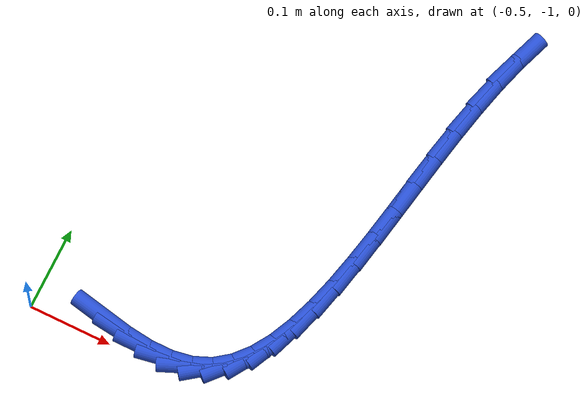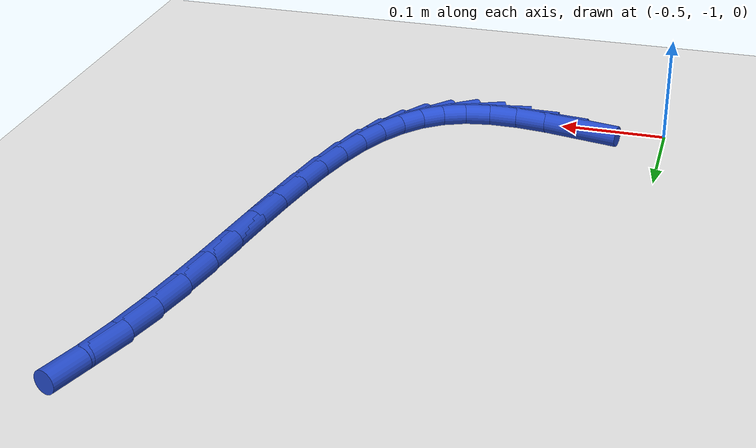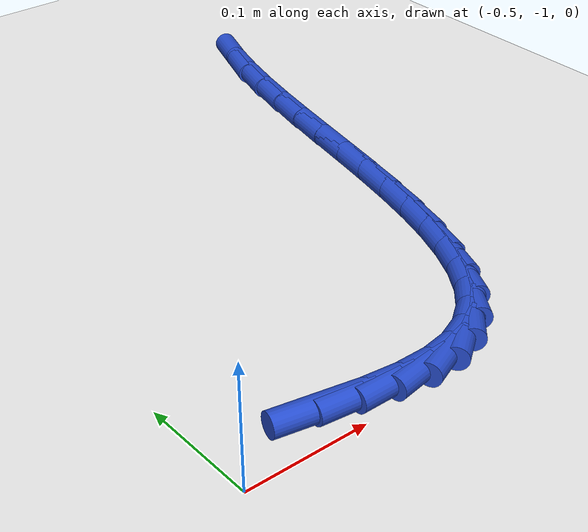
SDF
<sdf version="1.6">
 <world name="default">
  <model name="ground_plane">
   <static>1</static>
   <link name="link">
    <collision name="collision">
     <geometry><plane><normal>0 0 1</normal><size>100 100</size></plane></geometry>
     <surface><friction><ode><mu>100</mu><mu2>50</mu2></ode></friction></surface>
    </collision>
    <visual name="visual">
     <cast_shadows>0</cast_shadows>
     <geometry><plane><normal>0 0 1</normal><size>100 100</size></plane></geometry>
     <material>
      <script><uri>file://media/materials/scripts/gazebo.material</uri><name>Gazebo/WhiteGlow</name></script>
     </material>
    </visual>
   </link>
  </model>
  <model name="line">
   <link name="link_204">
    <pose>-0.4186012507564091 -0.976996281933243 0.01 0 1.57 -0.19822344890955088</pose>
    <collision name="collision">
     <geometry><cylinder><radius>0.01</radius><length>0.08</length></cylinder></geometry>
    </collision>
    <visual name="visual">
     <material>
      <script><name>Gazebo/Blue</name><uri>file://media/materials/scripts/gazebo.material</uri></script>
     </material>
     <geometry><cylinder><radius>0.01</radius><length>0.08</length></cylinder></geometry>
    </visual>
   </link>
   <link name="link_205">
    <pose>-0.3871497804627314 -0.9833136603440275 0.01 0 1.57 -0.11904630802499845</pose>
    <collision name="collision">
     <geometry><cylinder><radius>0.01</radius><length>0.08</length></cylinder></geometry>
    </collision>
    <visual name="visual">
     <material>
      <script><name>Gazebo/Blue</name><uri>file://media/materials/scripts/gazebo.material</uri></script>
     </material>
     <geometry><cylinder><radius>0.01</radius><length>0.08</length></cylinder></geometry>
    </visual>
   </link>
   <link name="link_206">
    <pose>-0.357584520353921 -0.9868500169871874 0.01 0 1.57 -0.00013954295415557244</pose>
    <collision name="collision">
     <geometry><cylinder><radius>0.01</radius><length>0.08</length></cylinder></geometry>
    </collision>
    <visual name="visual">
     <material>
      <script><name>Gazebo/Blue</name><uri>file://media/materials/scripts/gazebo.material</uri></script>
     </material>
     <geometry><cylinder><radius>0.01</radius><length>0.08</length></cylinder></geometry>
    </visual>
   </link>
   <link name="link_207">
    <pose>-0.33025814551396004 -0.9868538301902837 0.01 0 1.57 0.1713487571705785</pose>
    <collision name="collision">
     <geometry><cylinder><radius>0.01</radius><length>0.08</length></cylinder></geometry>
    </collision>
    <visual name="visual">
     <material>
      <script><name>Gazebo/Blue</name><uri>file://media/materials/scripts/gazebo.material</uri></script>
     </material>
     <geometry><cylinder><radius>0.01</radius><length>0.08</length></cylinder></geometry>
    </visual>
   </link>
   <link name="link_208">
    <pose>-0.3055233310268298 -0.9825735782808763 0.01 0 1.57 0.4011989888633969</pose>
    <collision name="collision">
     <geometry><cylinder><radius>0.01</radius><length>0.08</length></cylinder></geometry>
    </collision>
    <visual name="visual">
     <material>
      <script><name>Gazebo/Blue</name><uri>file://media/materials/scripts/gazebo.material</uri></script>
     </material>
     <geometry><cylinder><radius>0.01</radius><length>0.08</length></cylinder></geometry>
    </visual>
   </link>
   <link name="link_209">
    <pose>-0.28370133580858586 -0.9733165297158094 0.01 0 1.57 0.643859471467119</pose>
    <collision name="collision">
     <geometry><cylinder><radius>0.01</radius><length>0.08</length></cylinder></geometry>
    </collision>
    <visual name="visual">
     <material>
      <script><name>Gazebo/Blue</name><uri>file://media/materials/scripts/gazebo.material</uri></script>
     </material>
     <geometry><cylinder><radius>0.01</radius><length>0.08</length></cylinder></geometry>
    </visual>
   </link>
   <link name="link_210">
    <pose>-0.26474146316943753 -0.9590860059589313 0.01 0 1.57 0.8522895164179445</pose>
    <collision name="collision">
     <geometry><cylinder><radius>0.01</radius><length>0.08</length></cylinder></geometry>
    </collision>
    <visual name="visual">
     <material>
      <script><name>Gazebo/Blue</name><uri>file://media/materials/scripts/gazebo.material</uri></script>
     </material>
     <geometry><cylinder><radius>0.01</radius><length>0.08</length></cylinder></geometry>
    </visual>
   </link>
   <link name="link_211">
    <pose>-0.2483498040960837 -0.9403404598566029 0.01 0 1.57 1.01614547206455</pose>
    <collision name="collision">
     <geometry><cylinder><radius>0.01</radius><length>0.08</length></cylinder></geometry>
    </collision>
    <visual name="visual">
     <material>
      <script><name>Gazebo/Blue</name><uri>file://media/materials/scripts/gazebo.material</uri></script>
     </material>
     <geometry><cylinder><radius>0.01</radius><length>0.08</length></cylinder></geometry>
    </visual>
   </link>
   <link name="link_212">
    <pose>-0.23422824790870708 -0.9175462069747329 0.01 0 1.57 1.1391474196566538</pose>
    <collision name="collision">
     <geometry><cylinder><radius>0.01</radius><length>0.08</length></cylinder></geometry>
    </collision>
    <visual name="visual">
     <material>
      <script><name>Gazebo/Blue</name><uri>file://media/materials/scripts/gazebo.material</uri></script>
     </material>
     <geometry><cylinder><radius>0.01</radius><length>0.08</length></cylinder></geometry>
    </visual>
   </link>
   <link name="link_213">
    <pose>-0.22207868392749033 -0.8911695628792299 0.01 0 1.57 1.2295004847567261</pose>
    <collision name="collision">
     <geometry><cylinder><radius>0.01</radius><length>0.08</length></cylinder></geometry>
    </collision>
    <visual name="visual">
     <material>
      <script><name>Gazebo/Blue</name><uri>file://media/materials/scripts/gazebo.material</uri></script>
     </material>
     <geometry><cylinder><radius>0.01</radius><length>0.08</length></cylinder></geometry>
    </visual>
   </link>
   <link name="link_214">
    <pose>-0.21160300147261607 -0.8616768431360026 0.01 0 1.57 1.2949044969232768</pose>
    <collision name="collision">
     <geometry><cylinder><radius>0.01</radius><length>0.08</length></cylinder></geometry>
    </collision>
    <visual name="visual">
     <material>
      <script><name>Gazebo/Blue</name><uri>file://media/materials/scripts/gazebo.material</uri></script>
     </material>
     <geometry><cylinder><radius>0.01</radius><length>0.08</length></cylinder></geometry>
    </visual>
   </link>
   <link name="link_215">
    <pose>-0.20250308986426674 -0.8295343633109591 0.01 0 1.57 1.341208871886266</pose>
    <collision name="collision">
     <geometry><cylinder><radius>0.01</radius><length>0.08</length></cylinder></geometry>
    </collision>
    <visual name="visual">
     <material>
      <script><name>Gazebo/Blue</name><uri>file://media/materials/scripts/gazebo.material</uri></script>
     </material>
     <geometry><cylinder><radius>0.01</radius><length>0.08</length></cylinder></geometry>
    </visual>
   </link>
   <link name="link_216">
    <pose>-0.19448083842262553 -0.7952084389700099 0.01 0 1.57 1.3724914621164543</pose>
    <collision name="collision">
     <geometry><cylinder><radius>0.01</radius><length>0.08</length></cylinder></geometry>
    </collision>
    <visual name="visual">
     <material>
      <script><name>Gazebo/Blue</name><uri>file://media/materials/scripts/gazebo.material</uri></script>
     </material>
     <geometry><cylinder><radius>0.01</radius><length>0.08</length></cylinder></geometry>
    </visual>
   </link>
   <link name="link_217">
    <pose>-0.18723813646787468 -0.7591653856790626 0.01 0 1.57 1.391447455094901</pose>
    <collision name="collision">
     <geometry><cylinder><radius>0.01</radius><length>0.08</length></cylinder></geometry>
    </collision>
    <visual name="visual">
     <material>
      <script><name>Gazebo/Blue</name><uri>file://media/materials/scripts/gazebo.material</uri></script>
     </material>
     <geometry><cylinder><radius>0.01</radius><length>0.08</length></cylinder></geometry>
    </visual>
   </link>
   <link name="link_218">
    <pose>-0.18047687332019693 -0.7218715190040259 0.01 0 1.57 1.3997372449882124</pose>
    <collision name="collision">
     <geometry><cylinder><radius>0.01</radius><length>0.08</length></cylinder></geometry>
    </collision>
    <visual name="visual">
     <material>
      <script><name>Gazebo/Blue</name><uri>file://media/materials/scripts/gazebo.material</uri></script>
     </material>
     <geometry><cylinder><radius>0.01</radius><length>0.08</length></cylinder></geometry>
    </visual>
   </link>
   <link name="link_219">
    <pose>-0.17389893829977493 -0.683793154510809 0.01 0 1.57 1.398224898538657</pose>
    <collision name="collision">
     <geometry><cylinder><radius>0.01</radius><length>0.08</length></cylinder></geometry>
    </collision>
    <visual name="visual">
     <material>
      <script><name>Gazebo/Blue</name><uri>file://media/materials/scripts/gazebo.material</uri></script>
     </material>
     <geometry><cylinder><radius>0.01</radius><length>0.08</length></cylinder></geometry>
    </visual>
   </link>
   <link name="link_220">
    <pose>-0.16720622072679128 -0.6453966077653205 0.01 0 1.57 1.3871150129695795</pose>
    <collision name="collision">
     <geometry><cylinder><radius>0.01</radius><length>0.08</length></cylinder></geometry>
    </collision>
    <visual name="visual">
     <material>
      <script><name>Gazebo/Blue</name><uri>file://media/materials/scripts/gazebo.material</uri></script>
     </material>
     <geometry><cylinder><radius>0.01</radius><length>0.08</length></cylinder></geometry>
    </visual>
   </link>
   <link name="link_221">
    <pose>-0.1601006099214287 -0.607148194333469 0.01 0 1.57 1.366006976602505</pose>
    <collision name="collision">
     <geometry><cylinder><radius>0.01</radius><length>0.08</length></cylinder></geometry>
    </collision>
    <visual name="visual">
     <material>
      <script><name>Gazebo/Blue</name><uri>file://media/materials/scripts/gazebo.material</uri></script>
     </material>
     <geometry><cylinder><radius>0.01</radius><length>0.08</length></cylinder></geometry>
    </visual>
   </link>
   <link name="link_222">
    <pose>-0.15228399520386976 -0.5695142297811631 0.01 0 1.57 1.3338818253206626</pose>
    <collision name="collision">
     <geometry><cylinder><radius>0.01</radius><length>0.08</length></cylinder></geometry>
    </collision>
    <visual name="visual">
     <material>
      <script><name>Gazebo/Blue</name><uri>file://media/materials/scripts/gazebo.material</uri></script>
     </material>
     <geometry><cylinder><radius>0.01</radius><length>0.08</length></cylinder></geometry>
    </visual>
   </link>
   <link name="link_223">
    <pose>-0.14345826589429686 -0.5329610296743108 0.01 0 1.57 1.2890358176097405</pose>
    <collision name="collision">
     <geometry><cylinder><radius>0.01</radius><length>0.08</length></cylinder></geometry>
    </collision>
    <visual name="visual">
     <material>
      <script><name>Gazebo/Blue</name><uri>file://media/materials/scripts/gazebo.material</uri></script>
     </material>
     <geometry><cylinder><radius>0.01</radius><length>0.08</length></cylinder></geometry>
    </visual>
   </link>
   <link name="link_224">
    <pose>-0.13332533774441102 -0.49795488016478856 0.01 0 1.57 1.2344578361996998</pose>
    <collision name="collision">
     <geometry><cylinder><radius>0.01</radius><length>0.08</length></cylinder></geometry>
    </collision>
    <visual name="visual">
     <material>
      <script><name>Gazebo/Blue</name><uri>file://media/materials/scripts/gazebo.material</uri></script>
     </material>
     <geometry><cylinder><radius>0.01</radius><length>0.08</length></cylinder></geometry>
    </visual>
   </link>
  </model>
 </world>
</sdf>
